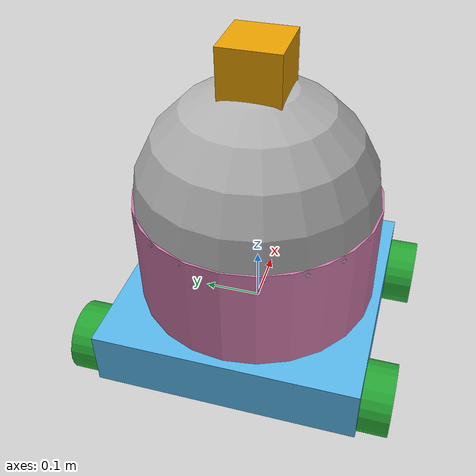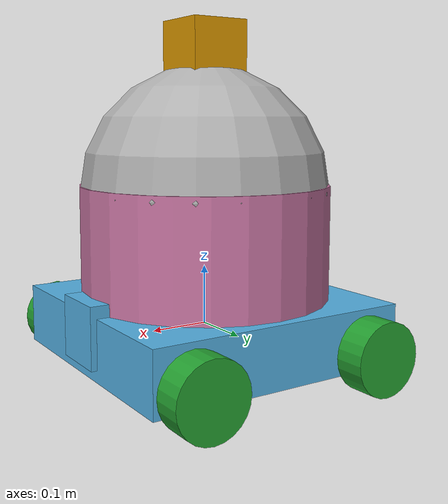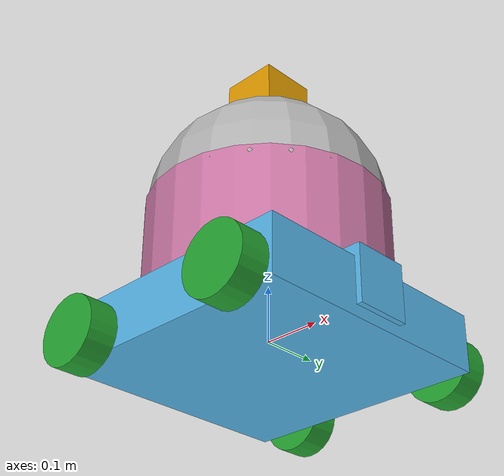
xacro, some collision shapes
<?xml version='1.0'?>

<robot name="second_robot" xmlns:xacro="http://www.ros.org/wiki/xacro">
<xacro:include filename="$(find my_robot)/urdf/second_robot.gazebo" />

<gazebo reference="wheel_right_front">
    <material>Gazebo/Green</material>
</gazebo>
<gazebo reference="wheel_right_back">
    <material>Gazebo/Green</material>
</gazebo>
<gazebo reference="wheel_left_front">
    <material>Gazebo/Green</material>
</gazebo>
<gazebo reference="wheel_left_back">
    <material>Gazebo/Green</material>
</gazebo>
<gazebo reference="wheel_right_center">
    <material>Gazebo/Green</material>
</gazebo>
<gazebo reference="wheel_left_center">
    <material>Gazebo/Green</material>
</gazebo>

<gazebo reference="chassis">
  <visual>
    <material>
      <ambient>0.8225 0.19225 0.19225 1.0</ambient>
      <diffuse>0.50754 0.50754 0.50754 1.0</diffuse>
      <specular>0.508273 0.508273 0.508273 1.0</specular>
      <emissive>0.0 0.0 0.0 0.0</emissive>
    </material>
  </visual>
</gazebo>
<gazebo reference="tower">
  <visual>
    <material>
      <ambient>0.8225 0.19225 0.19225 1.0</ambient>
      <diffuse>0.50754 0.50754 0.50754 1.0</diffuse>
      <specular>0.508273 0.508273 0.508273 1.0</specular>
      <emissive>0.0 0.0 0.0 0.0</emissive>
    </material>
  </visual>
</gazebo>
<gazebo reference="cap">
  <visual>
    <material>
      <ambient>0.8225 0.19225 0.19225 1.0</ambient>
      <diffuse>0.50754 0.50754 0.50754 1.0</diffuse>
      <specular>0.508273 0.508273 0.508273 1.0</specular>
      <emissive>0.0 0.0 0.0 0.0</emissive>
    </material>
  </visual>
</gazebo>

	<link name="robot_footprint"></link>

	<joint name="robot_footprint_joint" type="fixed">
		<origin xyz="0 0 0" rpy="0 0 0" />
		<parent link="robot_footprint"/>
		<child link="chassis" />
	</joint>

    <link name='chassis'>

		<inertial>
			<mass value="3.0"/>
		  	<origin xyz="0 0 0" rpy=" 0 0 0"/>
		  	<inertia
		      ixx="0.16" ixy="0" ixz="0"
		      iyy="0.16" iyz="0"
		      izz="0.16"/>
		</inertial>

		<collision>
		  	<origin xyz="0 0 0" rpy=" 0 0 -1.5707"/>
		  	<geometry>
		    	<box size="0.45 0.45 .1"/>
		  	</geometry>
		</collision>

		<visual>
		  	<origin xyz="0 0 0" rpy=" 0 0 -1.5707"/>
		  	<geometry>
		    	<box size="0.45 0.45 .1"/>
			</geometry>
		</visual>

	</link>

	<link name='wheel_left_front'>

		<inertial>
		<mass value="0.3"/>
		<origin xyz="0.0 0 0" rpy=" 0 0 0"/>
		<inertia
		  ixx="0.1" ixy="0" ixz="0"
		  iyy="0.1" iyz="0"
		  izz="0.1"/>
		</inertial>

		<visual>
			<origin xyz="0 0 0" rpy="1.5707 0 0"/>
			<geometry>
				<cylinder radius="0.06" length="0.05"/>
			</geometry>
		</visual>

		<collision>
			<origin xyz="0 0 0" rpy="1.5707 0 0"/>
			<geometry>
				<cylinder radius="0.06" length="0.05"/>
			</geometry>
		</collision>

	</link>

	<link name='wheel_left_back'>

        <inertial>
			<mass value="0.3"/>
			<origin xyz="0.0 0 0" rpy=" 0 0 0"/>
			<inertia
			  ixx="0.1" ixy="0" ixz="0"
			  iyy="0.1" iyz="0"
			  izz="0.1"/>
		</inertial>

		<visual>
			<origin xyz="0 0 0" rpy="1.5707 0 0"/>
			<geometry>
				<cylinder radius="0.06" length="0.05"/>
			</geometry>
		</visual>

		<collision>
			<origin xyz="0 0 0" rpy="1.5707 0 0"/>
			<geometry>
				<cylinder radius="0.06" length="0.05"/>
			</geometry>
		</collision>

	</link>

	<link name='wheel_right_front'>

		<inertial>
			<mass value="0.3"/>
			<origin xyz="0.0 0 0" rpy=" 0 0 0"/>
			<inertia
			  ixx="0.1" ixy="0" ixz="0"
			  iyy="0.1" iyz="0"
			  izz="0.1"/>
		</inertial>

		<visual>
			<origin xyz="0 0 0" rpy="1.5707 0 0"/>
			<geometry>
				<cylinder radius="0.06" length="0.05"/>
			</geometry>
		</visual>

		<collision>
			<origin xyz="0 0 0" rpy="1.5707 0 0"/>
			<geometry>
				<cylinder radius="0.06" length="0.05"/>
			</geometry>
		</collision>

    </link>

	<link name='wheel_right_back'>

		<inertial>
			<mass value="0.3"/>
			<origin xyz="0.0 0 0" rpy=" 0 0 0"/>
			<inertia
			  ixx="0.1" ixy="0" ixz="0"
			  iyy="0.1" iyz="0"
			  izz="0.1"/>
		</inertial>

		<visual>
			<origin xyz="0 0 0" rpy="1.5707 0 0"/>
			<geometry>
				<cylinder radius="0.06" length="0.05"/>
			</geometry>
		</visual>

		<collision>
			<origin xyz="0 0 0" rpy="1.5707 0 0"/>
			<geometry>
				<cylinder radius="0.06" length="0.05"/>
			</geometry>
		</collision>

    </link>

    <link name='tower'>

		<inertial>
			<mass value="0.1"/>
			<origin xyz="0.0 0 0" rpy=" 0 0 0"/>
			<inertia
			  ixx="0.1" ixy="0" ixz="0"
			  iyy="0.1" iyz="0"
			  izz="0.1"/>
		</inertial>

		<visual>
			<origin xyz="0 0 0" rpy="0 0 0"/>
			<geometry>
				<cylinder radius="0.21" length="0.2"/>
			</geometry>
		</visual>

		<collision>
			<origin xyz="0 0 0" rpy="0 0 0"/>
			<geometry>
				<cylinder radius="0.21" length="0.2"/>
			</geometry>
		</collision>

	</link>

	<link name='cap'>

		<inertial>
			<mass value="0.1"/>
		  	<origin xyz="0 0 0" rpy=" 0 1.5707 1.5707"/>
		  	<inertia
		      ixx="0.1" ixy="0" ixz="0"
		      iyy="0.1" iyz="0"
		      izz="0.1"/>
		</inertial>

		<collision>
			<origin xyz="0 0 0" rpy=" 0 0 0"/>
		  	<geometry>
		    	<sphere radius="0.209"/>
		  	</geometry>
		</collision>

		<visual>
			<origin xyz="0 0 0" rpy=" 0 0 0"/>
			<geometry>
		    	<sphere radius="0.209"/>
		  	</geometry>
		</visual>

	</link>

	<joint name="tower_cap" type="fixed">
		<origin xyz="0 0 0.09" rpy="0 0 0" />
		<parent link="tower"/>
		<child link="cap" />
	</joint>

	<joint name="chassis_tower" type="fixed">
		<origin xyz="0 0 0.14" rpy="0 0 0" />
		<parent link="chassis"/>
		<child link="tower" />
	</joint>

	<joint name="left_front_axis" type="continuous">
		<origin xyz="0.16 0.2505 -0.02" rpy="0 0 0"/>
		<child link="wheel_left_front"/>
		<parent link="chassis"/>
		<axis xyz="0 1 0" rpy="0 0 0"/>
		<limit effort="10000" velocity="1000"/>
		<dynamics damping="1.0" friction="1.0"/>
	</joint>

	<joint name="left_back_axis" type="continuous">
		<origin xyz="-0.16 0.2505 -0.02" rpy="0 0 0"/>
		<child link="wheel_left_back"/>
		<parent link="chassis"/>
		<axis xyz="0 1 0" rpy="0 0 0"/>
		<limit effort="10000" velocity="1000"/>
		<dynamics damping="1.0" friction="1.0"/>
	</joint>

	<joint name="right_back_axis" type="continuous">
		<origin xyz="-0.16 -0.2505 -0.02" rpy="0 0 0"/>
		<child link="wheel_right_back"/>
		<parent link="chassis"/>
		<axis xyz="0 1 0" rpy="0 0 0"/>
		<limit effort="10000" velocity="1000"/>
		<dynamics damping="1.0" friction="1.0"/>
	</joint>

	<joint name="right_front_axis" type="continuous">
		<origin xyz="0.16 -0.2505 -0.02" rpy="0 0 0"/>
		<child link="wheel_right_front"/>
		<parent link="chassis"/>
		<axis xyz="0 1 0" rpy="0 0 0"/>
		<limit effort="10000" velocity="1000"/>
		<dynamics damping="1.0" friction="1.0"/>
	</joint>

	<link name="hokuyo">
		<inertial>
		<mass value="1e-5"/>
		<origin xyz="0.0 0 0" rpy=" 0 0 0"/>
		<inertia
			ixx="1e-6" ixy="0" ixz="0"
			iyy="1e-6" iyz="0"
			izz="1e-6"/>
		</inertial>

		<collision>
		    <origin xyz="0 0 0" rpy="0 0 0" />
			<geometry>
			  <box size="0.1 0.1 0.1"/>
			</geometry>
		</collision>

		<visual>
			<origin xyz="0 0 0" rpy="0 0 0"/>
		    <geometry>
		      <mesh filename="package://my_robot/meshes/hokuyo.dae"/>
		    </geometry>
		</visual>
	</link>

  <joint type="fixed" name="hokuyo_joint">
    <origin xyz="0 0 0.32" rpy="0 0 0"/>
    <child link="hokuyo"/>
    <parent link="tower"/>
    <axis xyz="0 1 0" rpy="0 0 0"/>
  </joint>

	<link name="camera">
		<inertial>
			<mass value="1e-5"/>
			<origin xyz="0.0 0 0" rpy=" 0 0 0"/>
			<inertia
				ixx="1e-6" ixy="0" ixz="0"
				iyy="1e-6" iyz="0"
				izz="1e-6"/>
		</inertial>

		<collision>
		    <origin xyz="-0.03 0 0.05" rpy="0 0 0" />
			<geometry>
			  <box size="0.1 0.1 0.1"/>
			</geometry>
		</collision>

		<visual>
			<origin xyz="0 0 0" rpy="0 0 1.5707"/>
		    <geometry>
		      <mesh filename="package://my_robot/meshes/old_camera.dae" scale="0.035 0.035 0.035"/>
		    </geometry>
		</visual>
	</link>

  <joint type="fixed" name="camera_joint">
    <origin xyz="0.215 0 -0.03" rpy="0 0 0"/>
    <child link="camera"/>
    <parent link="chassis"/>
    <axis xyz="0 1 0" rpy="0 0 0"/>
  </joint>

</robot>
